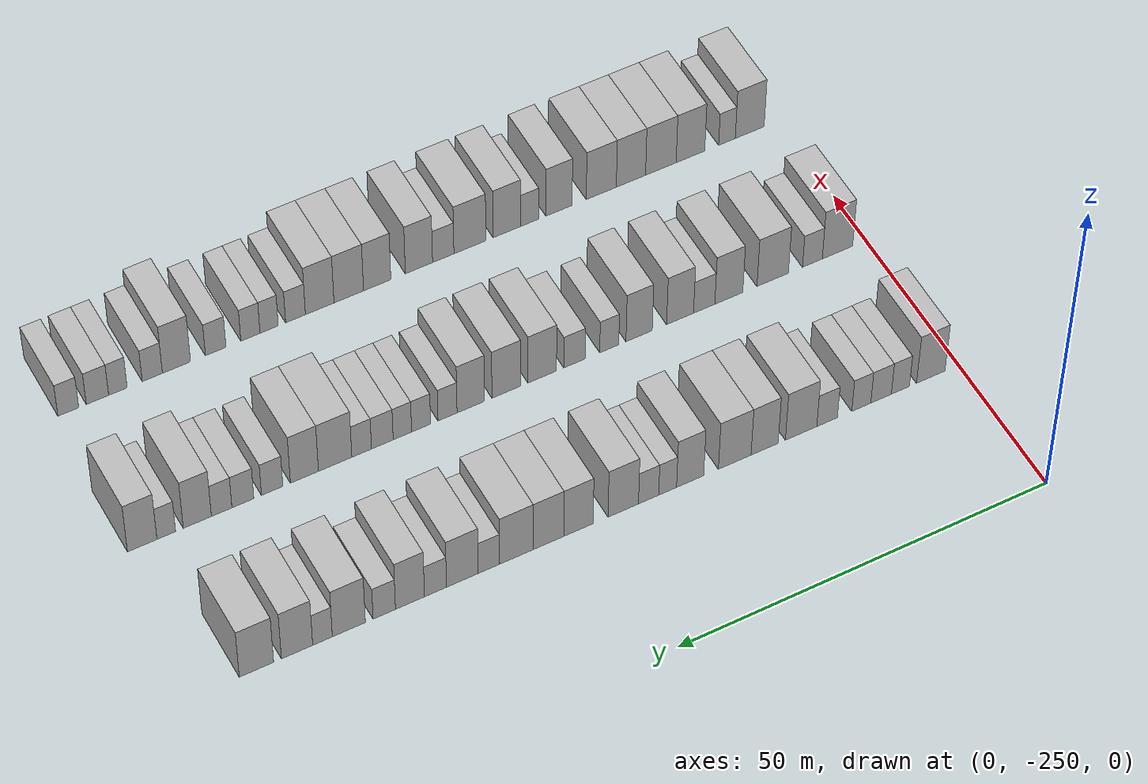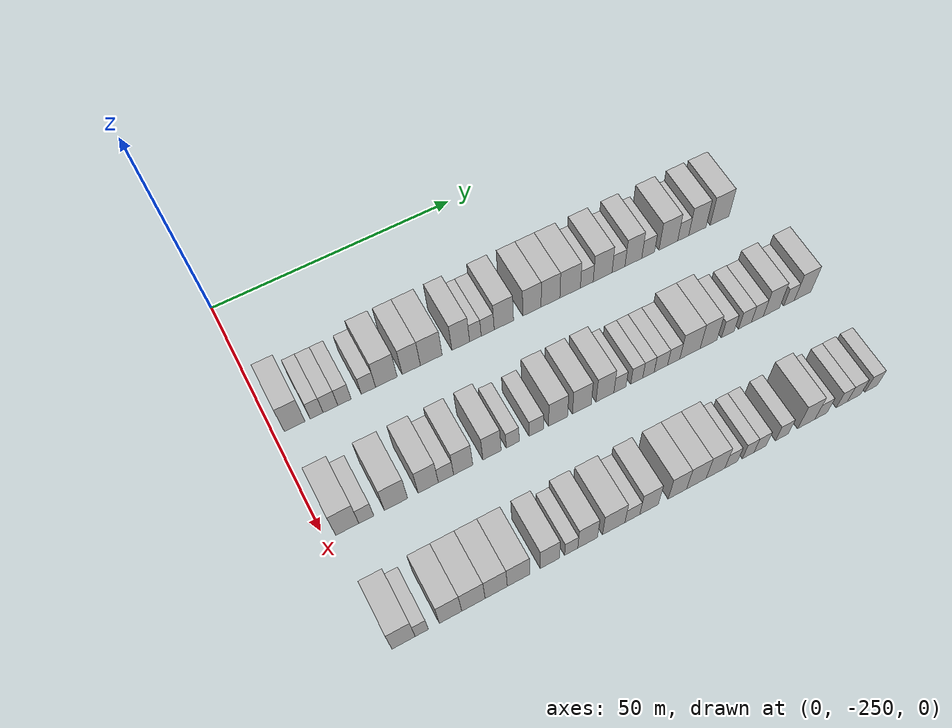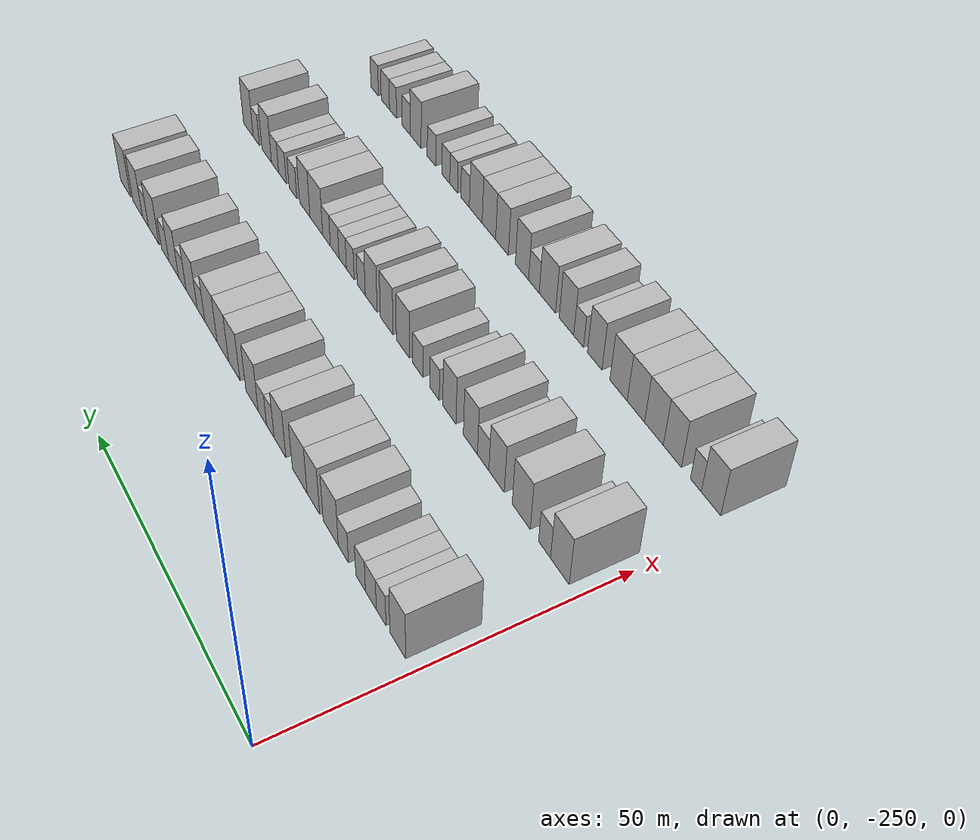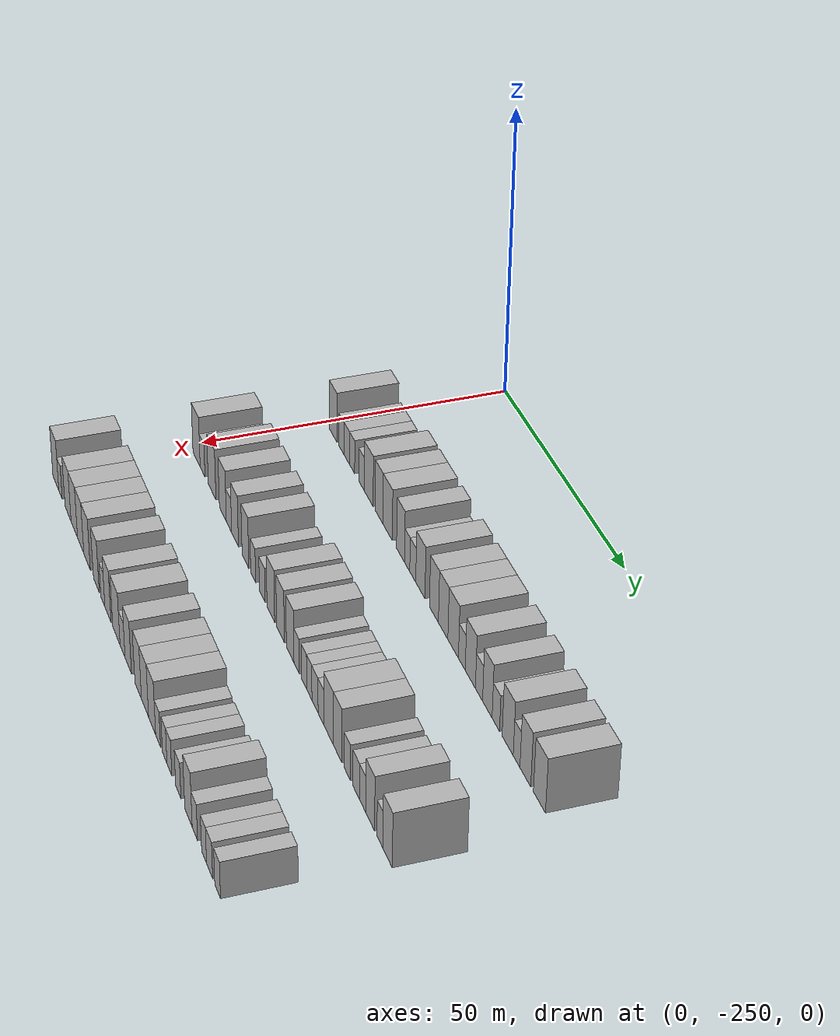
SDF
<sdf version="1.6">
 <world name="default">
  <model name="building_1">
   <static>1</static>
   <pose>25.0000 -245.9972 0 0.000000 0.000000 0.000000</pose>
   <link name="link">
    <pose>0 0 4.50 0 0 0</pose>
    <collision name="collision"><geometry><box><size>10.0000 4.0056 9.0000</size></box></geometry></collision>
    <visual name="visual">
     <cast_shadows>0</cast_shadows>
     <geometry><box><size>10.0000 4.0056 9.0000</size></box></geometry>
     <material>
      <script>
       <uri>model://HANNAS_wall/materials/scripts</uri>
       <uri>model://HANNAS_wall/materials/textures</uri>
       <name>vrc/HANNAS_wall</name>
      </script>
     </material>
    </visual>
   </link>
  </model>
  <model name="building_2">
   <static>1</static>
   <pose>25.0000 -241.7306 0 0.000000 0.000000 0.000000</pose>
   <link name="link">
    <pose>0 0 3.00 0 0 0</pose>
    <collision name="collision"><geometry><box><size>10.0000 2.5277 6.0000</size></box></geometry></collision>
    <visual name="visual">
     <cast_shadows>0</cast_shadows>
     <geometry><box><size>10.0000 2.5277 6.0000</size></box></geometry>
     <material>
      <script>
       <uri>model://HANNAS_wall/materials/scripts</uri>
       <uri>model://HANNAS_wall/materials/textures</uri>
       <name>vrc/HANNAS_wall</name>
      </script>
     </material>
    </visual>
   </link>
  </model>
  <model name="building_3">
   <static>1</static>
   <pose>25.0000 -239.0258 0 0.000000 0.000000 0.000000</pose>
   <link name="link">
    <pose>0 0 3.00 0 0 0</pose>
    <collision name="collision"><geometry><box><size>10.0000 2.8818 6.0000</size></box></geometry></collision>
    <visual name="visual">
     <cast_shadows>0</cast_shadows>
     <geometry><box><size>10.0000 2.8818 6.0000</size></box></geometry>
     <material>
      <script>
       <uri>model://HANNAS_wall/materials/scripts</uri>
       <uri>model://HANNAS_wall/materials/textures</uri>
       <name>vrc/HANNAS_wall</name>
      </script>
     </material>
    </visual>
   </link>
  </model>
  <model name="building_4">
   <static>1</static>
   <pose>25.0000 -236.2623 0 0.000000 0.000000 0.000000</pose>
   <link name="link">
    <pose>0 0 3.00 0 0 0</pose>
    <collision name="collision"><geometry><box><size>10.0000 2.6450 6.0000</size></box></geometry></collision>
    <visual name="visual">
     <cast_shadows>0</cast_shadows>
     <geometry><box><size>10.0000 2.6450 6.0000</size></box></geometry>
     <material>
      <script>
       <uri>model://HANNAS_wall/materials/scripts</uri>
       <uri>model://HANNAS_wall/materials/textures</uri>
       <name>vrc/HANNAS_wall</name>
      </script>
     </material>
    </visual>
   </link>
  </model>
  <model name="building_5">
   <static>1</static>
   <pose>25.0000 -231.5114 0 0.000000 0.000000 0.000000</pose>
   <link name="link">
    <pose>0 0 3.00 0 0 0</pose>
    <collision name="collision"><geometry><box><size>10.0000 2.8569 6.0000</size></box></geometry></collision>
    <visual name="visual">
     <cast_shadows>0</cast_shadows>
     <geometry><box><size>10.0000 2.8569 6.0000</size></box></geometry>
     <material>
      <script>
       <uri>model://HANNAS_wall/materials/scripts</uri>
       <uri>model://HANNAS_wall/materials/textures</uri>
       <name>vrc/HANNAS_wall</name>
      </script>
     </material>
    </visual>
   </link>
  </model>
  <model name="building_6">
   <static>1</static>
   <pose>25.0000 -227.9132 0 0.000000 0.000000 0.000000</pose>
   <link name="link">
    <pose>0 0 4.50 0 0 0</pose>
    <collision name="collision"><geometry><box><size>10.0000 4.3393 9.0000</size></box></geometry></collision>
    <visual name="visual">
     <cast_shadows>0</cast_shadows>
     <geometry><box><size>10.0000 4.3393 9.0000</size></box></geometry>
     <material>
      <script>
       <uri>model://HANNAS_wall/materials/scripts</uri>
       <uri>model://HANNAS_wall/materials/textures</uri>
       <name>vrc/HANNAS_wall</name>
      </script>
     </material>
    </visual>
   </link>
  </model>
  <model name="building_7">
   <static>1</static>
   <pose>25.0000 -222.8811 0 0.000000 0.000000 0.000000</pose>
   <link name="link">
    <pose>0 0 4.50 0 0 0</pose>
    <collision name="collision"><geometry><box><size>10.0000 3.7250 9.0000</size></box></geometry></collision>
    <visual name="visual">
     <cast_shadows>0</cast_shadows>
     <geometry><box><size>10.0000 3.7250 9.0000</size></box></geometry>
     <material>
      <script>
       <uri>model://HANNAS_wall/materials/scripts</uri>
       <uri>model://HANNAS_wall/materials/textures</uri>
       <name>vrc/HANNAS_wall</name>
      </script>
     </material>
    </visual>
   </link>
  </model>
  <model name="building_8">
   <static>1</static>
   <pose>25.0000 -218.7858 0 0.000000 0.000000 0.000000</pose>
   <link name="link">
    <pose>0 0 4.50 0 0 0</pose>
    <collision name="collision"><geometry><box><size>10.0000 4.4654 9.0000</size></box></geometry></collision>
    <visual name="visual">
     <cast_shadows>0</cast_shadows>
     <geometry><box><size>10.0000 4.4654 9.0000</size></box></geometry>
     <material>
      <script>
       <uri>model://HANNAS_wall/materials/scripts</uri>
       <uri>model://HANNAS_wall/materials/textures</uri>
       <name>vrc/HANNAS_wall</name>
      </script>
     </material>
    </visual>
   </link>
  </model>
  <model name="building_9">
   <static>1</static>
   <pose>25.0000 -212.7081 0 0.000000 0.000000 0.000000</pose>
   <link name="link">
    <pose>0 0 4.50 0 0 0</pose>
    <collision name="collision"><geometry><box><size>10.0000 3.6901 9.0000</size></box></geometry></collision>
    <visual name="visual">
     <cast_shadows>0</cast_shadows>
     <geometry><box><size>10.0000 3.6901 9.0000</size></box></geometry>
     <material>
      <script>
       <uri>model://HANNAS_wall/materials/scripts</uri>
       <uri>model://HANNAS_wall/materials/textures</uri>
       <name>vrc/HANNAS_wall</name>
      </script>
     </material>
    </visual>
   </link>
  </model>
  <model name="building_10">
   <static>1</static>
   <pose>25.0000 -209.6533 0 0.000000 0.000000 0.000000</pose>
   <link name="link">
    <pose>0 0 3.00 0 0 0</pose>
    <collision name="collision"><geometry><box><size>10.0000 2.4195 6.0000</size></box></geometry></collision>
    <visual name="visual">
     <cast_shadows>0</cast_shadows>
     <geometry><box><size>10.0000 2.4195 6.0000</size></box></geometry>
     <material>
      <script>
       <uri>model://HANNAS_wall/materials/scripts</uri>
       <uri>model://HANNAS_wall/materials/textures</uri>
       <name>vrc/HANNAS_wall</name>
      </script>
     </material>
    </visual>
   </link>
  </model>
  <model name="building_11">
   <static>1</static>
   <pose>25.0000 -207.0772 0 0.000000 0.000000 0.000000</pose>
   <link name="link">
    <pose>0 0 3.00 0 0 0</pose>
    <collision name="collision"><geometry><box><size>10.0000 2.7327 6.0000</size></box></geometry></collision>
    <visual name="visual">
     <cast_shadows>0</cast_shadows>
     <geometry><box><size>10.0000 2.7327 6.0000</size></box></geometry>
     <material>
      <script>
       <uri>model://HANNAS_wall/materials/scripts</uri>
       <uri>model://HANNAS_wall/materials/textures</uri>
       <name>vrc/HANNAS_wall</name>
      </script>
     </material>
    </visual>
   </link>
  </model>
  <model name="building_12">
   <static>1</static>
   <pose>25.0000 -203.6651 0 0.000000 0.000000 0.000000</pose>
   <link name="link">
    <pose>0 0 4.50 0 0 0</pose>
    <collision name="collision"><geometry><box><size>10.0000 4.0914 9.0000</size></box></geometry></collision>
    <visual name="visual">
     <cast_shadows>0</cast_shadows>
     <geometry><box><size>10.0000 4.0914 9.0000</size></box></geometry>
     <material>
      <script>
       <uri>model://HANNAS_wall/materials/scripts</uri>
       <uri>model://HANNAS_wall/materials/textures</uri>
       <name>vrc/HANNAS_wall</name>
      </script>
     </material>
    </visual>
   </link>
  </model>
  <model name="building_13">
   <static>1</static>
   <pose>25.0000 -197.6630 0 0.000000 0.000000 0.000000</pose>
   <link name="link">
    <pose>0 0 4.50 0 0 0</pose>
    <collision name="collision"><geometry><box><size>10.0000 3.9128 9.0000</size></box></geometry></collision>
    <visual name="visual">
     <cast_shadows>0</cast_shadows>
     <geometry><box><size>10.0000 3.9128 9.0000</size></box></geometry>
     <material>
      <script>
       <uri>model://HANNAS_wall/materials/scripts</uri>
       <uri>model://HANNAS_wall/materials/textures</uri>
       <name>vrc/HANNAS_wall</name>
      </script>
     </material>
    </visual>
   </link>
  </model>
  <model name="building_14">
   <static>1</static>
   <pose>25.0000 -193.6784 0 0.000000 0.000000 0.000000</pose>
   <link name="link">
    <pose>0 0 4.50 0 0 0</pose>
    <collision name="collision"><geometry><box><size>10.0000 4.0564 9.0000</size></box></geometry></collision>
    <visual name="visual">
     <cast_shadows>0</cast_shadows>
     <geometry><box><size>10.0000 4.0564 9.0000</size></box></geometry>
     <material>
      <script>
       <uri>model://HANNAS_wall/materials/scripts</uri>
       <uri>model://HANNAS_wall/materials/textures</uri>
       <name>vrc/HANNAS_wall</name>
      </script>
     </material>
    </visual>
   </link>
  </model>
  <model name="building_15">
   <static>1</static>
   <pose>25.0000 -189.4196 0 0.000000 0.000000 0.000000</pose>
   <link name="link">
    <pose>0 0 4.50 0 0 0</pose>
    <collision name="collision"><geometry><box><size>10.0000 4.4612 9.0000</size></box></geometry></collision>
    <visual name="visual">
     <cast_shadows>0</cast_shadows>
     <geometry><box><size>10.0000 4.4612 9.0000</size></box></geometry>
     <material>
      <script>
       <uri>model://HANNAS_wall/materials/scripts</uri>
       <uri>model://HANNAS_wall/materials/textures</uri>
       <name>vrc/HANNAS_wall</name>
      </script>
     </material>
    </visual>
   </link>
  </model>
  <model name="building_16">
   <static>1</static>
   <pose>25.0000 -185.7799 0 0.000000 0.000000 0.000000</pose>
   <link name="link">
    <pose>0 0 3.00 0 0 0</pose>
    <collision name="collision"><geometry><box><size>10.0000 2.8181 6.0000</size></box></geometry></collision>
    <visual name="visual">
     <cast_shadows>0</cast_shadows>
     <geometry><box><size>10.0000 2.8181 6.0000</size></box></geometry>
     <material>
      <script>
       <uri>model://HANNAS_wall/materials/scripts</uri>
       <uri>model://HANNAS_wall/materials/textures</uri>
       <name>vrc/HANNAS_wall</name>
      </script>
     </material>
    </visual>
   </link>
  </model>
  <model name="building_17">
   <static>1</static>
   <pose>25.0000 -182.2853 0 0.000000 0.000000 0.000000</pose>
   <link name="link">
    <pose>0 0 4.50 0 0 0</pose>
    <collision name="collision"><geometry><box><size>10.0000 4.1711 9.0000</size></box></geometry></collision>
    <visual name="visual">
     <cast_shadows>0</cast_shadows>
     <geometry><box><size>10.0000 4.1711 9.0000</size></box></geometry>
     <material>
      <script>
       <uri>model://HANNAS_wall/materials/scripts</uri>
       <uri>model://HANNAS_wall/materials/textures</uri>
       <name>vrc/HANNAS_wall</name>
      </script>
     </material>
    </visual>
   </link>
  </model>
  <model name="building_18">
   <static>1</static>
   <pose>25.0000 -178.7559 0 0.000000 0.000000 0.000000</pose>
   <link name="link">
    <pose>0 0 3.00 0 0 0</pose>
    <collision name="collision"><geometry><box><size>10.0000 2.8878 6.0000</size></box></geometry></collision>
    <visual name="visual">
     <cast_shadows>0</cast_shadows>
     <geometry><box><size>10.0000 2.8878 6.0000</size></box></geometry>
     <material>
      <script>
       <uri>model://HANNAS_wall/materials/scripts</uri>
       <uri>model://HANNAS_wall/materials/textures</uri>
       <name>vrc/HANNAS_wall</name>
      </script>
     </material>
    </visual>
   </link>
  </model>
  <model name="building_19">
   <static>1</static>
   <pose>25.0000 -175.4224 0 0.000000 0.000000 0.000000</pose>
   <link name="link">
    <pose>0 0 4.50 0 0 0</pose>
    <collision name="collision"><geometry><box><size>10.0000 3.7793 9.0000</size></box></geometry></collision>
    <visual name="visual">
     <cast_shadows>0</cast_shadows>
     <geometry><box><size>10.0000 3.7793 9.0000</size></box></geometry>
     <material>
      <script>
       <uri>model://HANNAS_wall/materials/scripts</uri>
       <uri>model://HANNAS_wall/materials/textures</uri>
       <name>vrc/HANNAS_wall</name>
      </script>
     </material>
    </visual>
   </link>
  </model>
  <model name="building_20">
   <static>1</static>
   <pose>25.0000 -172.0782 0 0.000000 0.000000 0.000000</pose>
   <link name="link">
    <pose>0 0 3.00 0 0 0</pose>
    <collision name="collision"><geometry><box><size>10.0000 2.9092 6.0000</size></box></geometry></collision>
    <visual name="visual">
     <cast_shadows>0</cast_shadows>
     <geometry><box><size>10.0000 2.9092 6.0000</size></box></geometry>
     <material>
      <script>
       <uri>model://HANNAS_wall/materials/scripts</uri>
       <uri>model://HANNAS_wall/materials/textures</uri>
       <name>vrc/HANNAS_wall</name>
      </script>
     </material>
    </visual>
   </link>
  </model>
  <model name="building_21">
   <static>1</static>
   <pose>25.0000 -167.4889 0 0.000000 0.000000 0.000000</pose>
   <link name="link">
    <pose>0 0 4.50 0 0 0</pose>
    <collision name="collision"><geometry><box><size>10.0000 4.2693 9.0000</size></box></geometry></collision>
    <visual name="visual">
     <cast_shadows>0</cast_shadows>
     <geometry><box><size>10.0000 4.2693 9.0000</size></box></geometry>
     <material>
      <script>
       <uri>model://HANNAS_wall/materials/scripts</uri>
       <uri>model://HANNAS_wall/materials/textures</uri>
       <name>vrc/HANNAS_wall</name>
      </script>
     </material>
    </visual>
   </link>
  </model>
  <model name="building_22">
   <static>1</static>
   <pose>25.0000 -164.0879 0 0.000000 0.000000 0.000000</pose>
   <link name="link">
    <pose>0 0 3.00 0 0 0</pose>
    <collision name="collision"><geometry><box><size>10.0000 2.5327 6.0000</size></box></geometry></collision>
    <visual name="visual">
     <cast_shadows>0</cast_shadows>
     <geometry><box><size>10.0000 2.5327 6.0000</size></box></geometry>
     <material>
      <script>
       <uri>model://HANNAS_wall/materials/scripts</uri>
       <uri>model://HANNAS_wall/materials/textures</uri>
       <name>vrc/HANNAS_wall</name>
      </script>
     </material>
    </visual>
   </link>
  </model>
  <model name="building_23">
   <static>1</static>
   <pose>25.0000 -160.8175 0 0.000000 0.000000 0.000000</pose>
   <link name="link">
    <pose>0 0 4.50 0 0 0</pose>
    <collision name="collision"><geometry><box><size>10.0000 4.0081 9.0000</size></box></geometry></collision>
    <visual name="visual">
     <cast_shadows>0</cast_shadows>
     <geometry><box><size>10.0000 4.0081 9.0000</size></box></geometry>
     <material>
      <script>
       <uri>model://HANNAS_wall/materials/scripts</uri>
       <uri>model://HANNAS_wall/materials/textures</uri>
       <name>vrc/HANNAS_wall</name>
      </script>
     </material>
    </visual>
   </link>
  </model>
  <model name="building_24">
   <static>1</static>
   <pose>25.0000 -155.6202 0 0.000000 0.000000 0.000000</pose>
   <link name="link">
    <pose>0 0 4.50 0 0 0</pose>
    <collision name="collision"><geometry><box><size>10.0000 4.3866 9.0000</size></box></geometry></collision>
    <visual name="visual">
     <cast_shadows>0</cast_shadows>
     <geometry><box><size>10.0000 4.3866 9.0000</size></box></geometry>
     <material>
      <script>
       <uri>model://HANNAS_wall/materials/scripts</uri>
       <uri>model://HANNAS_wall/materials/textures</uri>
       <name>vrc/HANNAS_wall</name>
      </script>
     </material>
    </visual>
   </link>
  </model>
  <model name="building_125">
   <static>1</static>
   <pose>47.0000 -245.8336 0 0.000000 0.000000 0.000000</pose>
   <link name="link">
    <pose>0 0 4.50 0 0 0</pose>
    <collision name="collision"><geometry><box><size>10.0000 4.3329 9.0000</size></box></geometry></collision>
    <visual name="visual">
     <cast_shadows>0</cast_shadows>
     <geometry><box><size>10.0000 4.3329 9.0000</size></box></geometry>
     <material>
      <script>
       <uri>model://HANNAS_wall/materials/scripts</uri>
       <uri>model://HANNAS_wall/materials/textures</uri>
       <name>vrc/HANNAS_wall</name>
      </script>
     </material>
    </visual>
   </link>
  </model>
  <model name="building_126">
   <static>1</static>
   <pose>47.0000 -242.2554 0 0.000000 0.000000 0.000000</pose>
   <link name="link">
    <pose>0 0 3.00 0 0 0</pose>
    <collision name="collision"><geometry><box><size>10.0000 2.8234 6.0000</size></box></geometry></collision>
    <visual name="visual">
     <cast_shadows>0</cast_shadows>
     <geometry><box><size>10.0000 2.8234 6.0000</size></box></geometry>
     <material>
      <script>
       <uri>model://HANNAS_wall/materials/scripts</uri>
       <uri>model://HANNAS_wall/materials/textures</uri>
       <name>vrc/HANNAS_wall</name>
      </script>
     </material>
    </visual>
   </link>
  </model>
  <model name="building_127">
   <static>1</static>
   <pose>47.0000 -236.6186 0 0.000000 0.000000 0.000000</pose>
   <link name="link">
    <pose>0 0 4.50 0 0 0</pose>
    <collision name="collision"><geometry><box><size>10.0000 4.4503 9.0000</size></box></geometry></collision>
    <visual name="visual">
     <cast_shadows>0</cast_shadows>
     <geometry><box><size>10.0000 4.4503 9.0000</size></box></geometry>
     <material>
      <script>
       <uri>model://HANNAS_wall/materials/scripts</uri>
       <uri>model://HANNAS_wall/materials/textures</uri>
       <name>vrc/HANNAS_wall</name>
      </script>
     </material>
    </visual>
   </link>
  </model>
  <model name="building_128">
   <static>1</static>
   <pose>47.0000 -230.4274 0 0.000000 0.000000 0.000000</pose>
   <link name="link">
    <pose>0 0 4.50 0 0 0</pose>
    <collision name="collision"><geometry><box><size>10.0000 3.9320 9.0000</size></box></geometry></collision>
    <visual name="visual">
     <cast_shadows>0</cast_shadows>
     <geometry><box><size>10.0000 3.9320 9.0000</size></box></geometry>
     <material>
      <script>
       <uri>model://HANNAS_wall/materials/scripts</uri>
       <uri>model://HANNAS_wall/materials/textures</uri>
       <name>vrc/HANNAS_wall</name>
      </script>
     </material>
    </visual>
   </link>
  </model>
  <model name="building_129">
   <static>1</static>
   <pose>47.0000 -226.9671 0 0.000000 0.000000 0.000000</pose>
   <link name="link">
    <pose>0 0 3.00 0 0 0</pose>
    <collision name="collision"><geometry><box><size>10.0000 2.9887 6.0000</size></box></geometry></collision>
    <visual name="visual">
     <cast_shadows>0</cast_shadows>
     <geometry><box><size>10.0000 2.9887 6.0000</size></box></geometry>
     <material>
      <script>
       <uri>model://HANNAS_wall/materials/scripts</uri>
       <uri>model://HANNAS_wall/materials/textures</uri>
       <name>vrc/HANNAS_wall</name>
      </script>
     </material>
    </visual>
   </link>
  </model>
  <model name="building_130">
   <static>1</static>
   <pose>47.0000 -223.5919 0 0.000000 0.000000 0.000000</pose>
   <link name="link">
    <pose>0 0 4.50 0 0 0</pose>
    <collision name="collision"><geometry><box><size>10.0000 3.7616 9.0000</size></box></geometry></collision>
    <visual name="visual">
     <cast_shadows>0</cast_shadows>
     <geometry><box><size>10.0000 3.7616 9.0000</size></box></geometry>
     <material>
      <script>
       <uri>model://HANNAS_wall/materials/scripts</uri>
       <uri>model://HANNAS_wall/materials/textures</uri>
       <name>vrc/HANNAS_wall</name>
      </script>
     </material>
    </visual>
   </link>
  </model>
  <model name="building_131">
   <static>1</static>
   <pose>47.0000 -217.8891 0 0.000000 0.000000 0.000000</pose>
   <link name="link">
    <pose>0 0 4.50 0 0 0</pose>
    <collision name="collision"><geometry><box><size>10.0000 3.6440 9.0000</size></box></geometry></collision>
    <visual name="visual">
     <cast_shadows>0</cast_shadows>
     <geometry><box><size>10.0000 3.6440 9.0000</size></box></geometry>
     <material>
      <script>
       <uri>model://HANNAS_wall/materials/scripts</uri>
       <uri>model://HANNAS_wall/materials/textures</uri>
       <name>vrc/HANNAS_wall</name>
      </script>
     </material>
    </visual>
   </link>
  </model>
  <model name="building_132">
   <static>1</static>
   <pose>47.0000 -213.7544 0 0.000000 0.000000 0.000000</pose>
   <link name="link">
    <pose>0 0 3.00 0 0 0</pose>
    <collision name="collision"><geometry><box><size>10.0000 2.6256 6.0000</size></box></geometry></collision>
    <visual name="visual">
     <cast_shadows>0</cast_shadows>
     <geometry><box><size>10.0000 2.6256 6.0000</size></box></geometry>
     <material>
      <script>
       <uri>model://HANNAS_wall/materials/scripts</uri>
       <uri>model://HANNAS_wall/materials/textures</uri>
       <name>vrc/HANNAS_wall</name>
      </script>
     </material>
    </visual>
   </link>
  </model>
  <model name="building_133">
   <static>1</static>
   <pose>47.0000 -208.9668 0 0.000000 0.000000 0.000000</pose>
   <link name="link">
    <pose>0 0 3.00 0 0 0</pose>
    <collision name="collision"><geometry><box><size>10.0000 2.9496 6.0000</size></box></geometry></collision>
    <visual name="visual">
     <cast_shadows>0</cast_shadows>
     <geometry><box><size>10.0000 2.9496 6.0000</size></box></geometry>
     <material>
      <script>
       <uri>model://HANNAS_wall/materials/scripts</uri>
       <uri>model://HANNAS_wall/materials/textures</uri>
       <name>vrc/HANNAS_wall</name>
      </script>
     </material>
    </visual>
   </link>
  </model>
  <model name="building_134">
   <static>1</static>
   <pose>47.0000 -204.5422 0 0.000000 0.000000 0.000000</pose>
   <link name="link">
    <pose>0 0 4.50 0 0 0</pose>
    <collision name="collision"><geometry><box><size>10.0000 3.8995 9.0000</size></box></geometry></collision>
    <visual name="visual">
     <cast_shadows>0</cast_shadows>
     <geometry><box><size>10.0000 3.8995 9.0000</size></box></geometry>
     <material>
      <script>
       <uri>model://HANNAS_wall/materials/scripts</uri>
       <uri>model://HANNAS_wall/materials/textures</uri>
       <name>vrc/HANNAS_wall</name>
      </script>
     </material>
    </visual>
   </link>
  </model>
  <model name="building_135">
   <static>1</static>
   <pose>47.0000 -199.6433 0 0.000000 0.000000 0.000000</pose>
   <link name="link">
    <pose>0 0 4.50 0 0 0</pose>
    <collision name="collision"><geometry><box><size>10.0000 3.8981 9.0000</size></box></geometry></collision>
    <visual name="visual">
     <cast_shadows>0</cast_shadows>
     <geometry><box><size>10.0000 3.8981 9.0000</size></box></geometry>
     <material>
      <script>
       <uri>model://HANNAS_wall/materials/scripts</uri>
       <uri>model://HANNAS_wall/materials/textures</uri>
       <name>vrc/HANNAS_wall</name>
      </script>
     </material>
    </visual>
   </link>
  </model>
  <model name="building_136">
   <static>1</static>
   <pose>47.0000 -194.8281 0 0.000000 0.000000 0.000000</pose>
   <link name="link">
    <pose>0 0 4.50 0 0 0</pose>
    <collision name="collision"><geometry><box><size>10.0000 3.7323 9.0000</size></box></geometry></collision>
    <visual name="visual">
     <cast_shadows>0</cast_shadows>
     <geometry><box><size>10.0000 3.7323 9.0000</size></box></geometry>
     <material>
      <script>
       <uri>model://HANNAS_wall/materials/scripts</uri>
       <uri>model://HANNAS_wall/materials/textures</uri>
       <name>vrc/HANNAS_wall</name>
      </script>
     </material>
    </visual>
   </link>
  </model>
  <model name="building_137">
   <static>1</static>
   <pose>47.0000 -191.6771 0 0.000000 0.000000 0.000000</pose>
   <link name="link">
    <pose>0 0 3.00 0 0 0</pose>
    <collision name="collision"><geometry><box><size>10.0000 2.5698 6.0000</size></box></geometry></collision>
    <visual name="visual">
     <cast_shadows>0</cast_shadows>
     <geometry><box><size>10.0000 2.5698 6.0000</size></box></geometry>
     <material>
      <script>
       <uri>model://HANNAS_wall/materials/scripts</uri>
       <uri>model://HANNAS_wall/materials/textures</uri>
       <name>vrc/HANNAS_wall</name>
      </script>
     </material>
    </visual>
   </link>
  </model>
  <model name="building_138">
   <static>1</static>
   <pose>47.0000 -188.1153 0 0.000000 0.000000 0.000000</pose>
   <link name="link">
    <pose>0 0 3.00 0 0 0</pose>
    <collision name="collision"><geometry><box><size>10.0000 2.5538 6.0000</size></box></geometry></collision>
    <visual name="visual">
     <cast_shadows>0</cast_shadows>
     <geometry><box><size>10.0000 2.5538 6.0000</size></box></geometry>
     <material>
      <script>
       <uri>model://HANNAS_wall/materials/scripts</uri>
       <uri>model://HANNAS_wall/materials/textures</uri>
       <name>vrc/HANNAS_wall</name>
      </script>
     </material>
    </visual>
   </link>
  </model>
  <model name="building_139">
   <static>1</static>
   <pose>47.0000 -185.6046 0 0.000000 0.000000 0.000000</pose>
   <link name="link">
    <pose>0 0 3.00 0 0 0</pose>
    <collision name="collision"><geometry><box><size>10.0000 2.4676 6.0000</size></box></geometry></collision>
    <visual name="visual">
     <cast_shadows>0</cast_shadows>
     <geometry><box><size>10.0000 2.4676 6.0000</size></box></geometry>
     <material>
      <script>
       <uri>model://HANNAS_wall/materials/scripts</uri>
       <uri>model://HANNAS_wall/materials/textures</uri>
       <name>vrc/HANNAS_wall</name>
      </script>
     </material>
    </visual>
   </link>
  </model>
  <model name="building_140">
   <static>1</static>
   <pose>47.0000 -182.9211 0 0.000000 0.000000 0.000000</pose>
   <link name="link">
    <pose>0 0 3.00 0 0 0</pose>
    <collision name="collision"><geometry><box><size>10.0000 2.8992 6.0000</size></box></geometry></collision>
    <visual name="visual">
     <cast_shadows>0</cast_shadows>
     <geometry><box><size>10.0000 2.8992 6.0000</size></box></geometry>
     <material>
      <script>
       <uri>model://HANNAS_wall/materials/scripts</uri>
       <uri>model://HANNAS_wall/materials/textures</uri>
       <name>vrc/HANNAS_wall</name>
      </script>
     </material>
    </visual>
   </link>
  </model>
  <model name="building_141">
   <static>1</static>
   <pose>47.0000 -180.1619 0 0.000000 0.000000 0.000000</pose>
   <link name="link">
    <pose>0 0 3.00 0 0 0</pose>
    <collision name="collision"><geometry><box><size>10.0000 2.6192 6.0000</size></box></geometry></collision>
    <visual name="visual">
     <cast_shadows>0</cast_shadows>
     <geometry><box><size>10.0000 2.6192 6.0000</size></box></geometry>
     <material>
      <script>
       <uri>model://HANNAS_wall/materials/scripts</uri>
       <uri>model://HANNAS_wall/materials/textures</uri>
       <name>vrc/HANNAS_wall</name>
      </script>
     </material>
    </visual>
   </link>
  </model>
  <model name="building_142">
   <static>1</static>
   <pose>47.0000 -176.6361 0 0.000000 0.000000 0.000000</pose>
   <link name="link">
    <pose>0 0 4.50 0 0 0</pose>
    <collision name="collision"><geometry><box><size>10.0000 4.4325 9.0000</size></box></geometry></collision>
    <visual name="visual">
     <cast_shadows>0</cast_shadows>
     <geometry><box><size>10.0000 4.4325 9.0000</size></box></geometry>
     <material>
      <script>
       <uri>model://HANNAS_wall/materials/scripts</uri>
       <uri>model://HANNAS_wall/materials/textures</uri>
       <name>vrc/HANNAS_wall</name>
      </script>
     </material>
    </visual>
   </link>
  </model>
  <model name="building_143">
   <static>1</static>
   <pose>47.0000 -172.5653 0 0.000000 0.000000 0.000000</pose>
   <link name="link">
    <pose>0 0 4.50 0 0 0</pose>
    <collision name="collision"><geometry><box><size>10.0000 3.7090 9.0000</size></box></geometry></collision>
    <visual name="visual">
     <cast_shadows>0</cast_shadows>
     <geometry><box><size>10.0000 3.7090 9.0000</size></box></geometry>
     <material>
      <script>
       <uri>model://HANNAS_wall/materials/scripts</uri>
       <uri>model://HANNAS_wall/materials/textures</uri>
       <name>vrc/HANNAS_wall</name>
      </script>
     </material>
    </visual>
   </link>
  </model>
  <model name="building_144">
   <static>1</static>
   <pose>47.0000 -168.3067 0 0.000000 0.000000 0.000000</pose>
   <link name="link">
    <pose>0 0 3.00 0 0 0</pose>
    <collision name="collision"><geometry><box><size>10.0000 2.8083 6.0000</size></box></geometry></collision>
    <visual name="visual">
     <cast_shadows>0</cast_shadows>
     <geometry><box><size>10.0000 2.8083 6.0000</size></box></geometry>
     <material>
      <script>
       <uri>model://HANNAS_wall/materials/scripts</uri>
       <uri>model://HANNAS_wall/materials/textures</uri>
       <name>vrc/HANNAS_wall</name>
      </script>
     </material>
    </visual>
   </link>
  </model>
  <model name="building_145">
   <static>1</static>
   <pose>47.0000 -164.4655 0 0.000000 0.000000 0.000000</pose>
   <link name="link">
    <pose>0 0 3.00 0 0 0</pose>
    <collision name="collision"><geometry><box><size>10.0000 2.8742 6.0000</size></box></geometry></collision>
    <visual name="visual">
     <cast_shadows>0</cast_shadows>
     <geometry><box><size>10.0000 2.8742 6.0000</size></box></geometry>
     <material>
      <script>
       <uri>model://HANNAS_wall/materials/scripts</uri>
       <uri>model://HANNAS_wall/materials/textures</uri>
       <name>vrc/HANNAS_wall</name>
      </script>
     </material>
    </visual>
   </link>
  </model>
  <model name="building_146">
   <static>1</static>
   <pose>47.0000 -161.6875 0 0.000000 0.000000 0.000000</pose>
   <link name="link">
    <pose>0 0 3.00 0 0 0</pose>
    <collision name="collision"><geometry><box><size>10.0000 2.6816 6.0000</size></box></geometry></collision>
    <visual name="visual">
     <cast_shadows>0</cast_shadows>
     <geometry><box><size>10.0000 2.6816 6.0000</size></box></geometry>
     <material>
      <script>
       <uri>model://HANNAS_wall/materials/scripts</uri>
       <uri>model://HANNAS_wall/materials/textures</uri>
       <name>vrc/HANNAS_wall</name>
      </script>
     </material>
    </visual>
   </link>
  </model>
  <model name="building_147">
   <static>1</static>
   <pose>47.0000 -158.5149 0 0.000000 0.000000 0.000000</pose>
   <link name="link">
    <pose>0 0 4.50 0 0 0</pose>
    <collision name="collision"><geometry><box><size>10.0000 3.6636 9.0000</size></box></geometry></collision>
    <visual name="visual">
     <cast_shadows>0</cast_shadows>
     <geometry><box><size>10.0000 3.6636 9.0000</size></box></geometry>
     <material>
      <script>
       <uri>model://HANNAS_wall/materials/scripts</uri>
       <uri>model://HANNAS_wall/materials/textures</uri>
       <name>vrc/HANNAS_wall</name>
      </script>
     </material>
    </visual>
   </link>
  </model>
  <model name="building_148">
   <static>1</static>
   <pose>47.0000 -154.4753 0 0.000000 0.000000 0.000000</pose>
   <link name="link">
    <pose>0 0 3.00 0 0 0</pose>
    <collision name="collision"><geometry><box><size>10.0000 2.4155 6.0000</size></box></geometry></collision>
    <visual name="visual">
     <cast_shadows>0</cast_shadows>
     <geometry><box><size>10.0000 2.4155 6.0000</size></box></geometry>
     <material>
      <script>
       <uri>model://HANNAS_wall/materials/scripts</uri>
       <uri>model://HANNAS_wall/materials/textures</uri>
       <name>vrc/HANNAS_wall</name>
      </script>
     </material>
    </visual>
   </link>
  </model>
  <model name="building_149">
   <static>1</static>
   <pose>47.0000 -151.3633 0 0.000000 0.000000 0.000000</pose>
   <link name="link">
    <pose>0 0 4.50 0 0 0</pose>
    <collision name="collision"><geometry><box><size>10.0000 3.8087 9.0000</size></box></geometry></collision>
    <visual name="visual">
     <cast_shadows>0</cast_shadows>
     <geometry><box><size>10.0000 3.8087 9.0000</size></box></geometry>
     <material>
      <script>
       <uri>model://HANNAS_wall/materials/scripts</uri>
       <uri>model://HANNAS_wall/materials/textures</uri>
       <name>vrc/HANNAS_wall</name>
      </script>
     </material>
    </visual>
   </link>
  </model>
  <model name="building_245">
   <static>1</static>
   <pose>69.0000 -245.9042 0 0.000000 0.000000 0.000000</pose>
   <link name="link">
    <pose>0 0 4.50 0 0 0</pose>
    <collision name="collision"><geometry><box><size>10.0000 4.1915 9.0000</size></box></geometry></collision>
    <visual name="visual">
     <cast_shadows>0</cast_shadows>
     <geometry><box><size>10.0000 4.1915 9.0000</size></box></geometry>
     <material>
      <script>
       <uri>model://HANNAS_wall/materials/scripts</uri>
       <uri>model://HANNAS_wall/materials/textures</uri>
       <name>vrc/HANNAS_wall</name>
      </script>
     </material>
    </visual>
   </link>
  </model>
  <model name="building_246">
   <static>1</static>
   <pose>69.0000 -242.6058 0 0.000000 0.000000 0.000000</pose>
   <link name="link">
    <pose>0 0 3.00 0 0 0</pose>
    <collision name="collision"><geometry><box><size>10.0000 2.4053 6.0000</size></box></geometry></collision>
    <visual name="visual">
     <cast_shadows>0</cast_shadows>
     <geometry><box><size>10.0000 2.4053 6.0000</size></box></geometry>
     <material>
      <script>
       <uri>model://HANNAS_wall/materials/scripts</uri>
       <uri>model://HANNAS_wall/materials/textures</uri>
       <name>vrc/HANNAS_wall</name>
      </script>
     </material>
    </visual>
   </link>
  </model>
  <model name="building_247">
   <static>1</static>
   <pose>69.0000 -237.3421 0 0.000000 0.000000 0.000000</pose>
   <link name="link">
    <pose>0 0 4.50 0 0 0</pose>
    <collision name="collision"><geometry><box><size>10.0000 4.1221 9.0000</size></box></geometry></collision>
    <visual name="visual">
     <cast_shadows>0</cast_shadows>
     <geometry><box><size>10.0000 4.1221 9.0000</size></box></geometry>
     <material>
      <script>
       <uri>model://HANNAS_wall/materials/scripts</uri>
       <uri>model://HANNAS_wall/materials/textures</uri>
       <name>vrc/HANNAS_wall</name>
      </script>
     </material>
    </visual>
   </link>
  </model>
  <model name="building_248">
   <static>1</static>
   <pose>69.0000 -233.0923 0 0.000000 0.000000 0.000000</pose>
   <link name="link">
    <pose>0 0 4.50 0 0 0</pose>
    <collision name="collision"><geometry><box><size>10.0000 4.3775 9.0000</size></box></geometry></collision>
    <visual name="visual">
     <cast_shadows>0</cast_shadows>
     <geometry><box><size>10.0000 4.3775 9.0000</size></box></geometry>
     <material>
      <script>
       <uri>model://HANNAS_wall/materials/scripts</uri>
       <uri>model://HANNAS_wall/materials/textures</uri>
       <name>vrc/HANNAS_wall</name>
      </script>
     </material>
    </visual>
   </link>
  </model>
  <model name="building_249">
   <static>1</static>
   <pose>69.0000 -228.8221 0 0.000000 0.000000 0.000000</pose>
   <link name="link">
    <pose>0 0 4.50 0 0 0</pose>
    <collision name="collision"><geometry><box><size>10.0000 4.1630 9.0000</size></box></geometry></collision>
    <visual name="visual">
     <cast_shadows>0</cast_shadows>
     <geometry><box><size>10.0000 4.1630 9.0000</size></box></geometry>
     <material>
      <script>
       <uri>model://HANNAS_wall/materials/scripts</uri>
       <uri>model://HANNAS_wall/materials/textures</uri>
       <name>vrc/HANNAS_wall</name>
      </script>
     </material>
    </visual>
   </link>
  </model>
  <model name="building_250">
   <static>1</static>
   <pose>69.0000 -224.6041 0 0.000000 0.000000 0.000000</pose>
   <link name="link">
    <pose>0 0 4.50 0 0 0</pose>
    <collision name="collision"><geometry><box><size>10.0000 4.2729 9.0000</size></box></geometry></collision>
    <visual name="visual">
     <cast_shadows>0</cast_shadows>
     <geometry><box><size>10.0000 4.2729 9.0000</size></box></geometry>
     <material>
      <script>
       <uri>model://HANNAS_wall/materials/scripts</uri>
       <uri>model://HANNAS_wall/materials/textures</uri>
       <name>vrc/HANNAS_wall</name>
      </script>
     </material>
    </visual>
   </link>
  </model>
  <model name="building_251">
   <static>1</static>
   <pose>69.0000 -218.6204 0 0.000000 0.000000 0.000000</pose>
   <link name="link">
    <pose>0 0 4.50 0 0 0</pose>
    <collision name="collision"><geometry><box><size>10.0000 3.6945 9.0000</size></box></geometry></collision>
    <visual name="visual">
     <cast_shadows>0</cast_shadows>
     <geometry><box><size>10.0000 3.6945 9.0000</size></box></geometry>
     <material>
      <script>
       <uri>model://HANNAS_wall/materials/scripts</uri>
       <uri>model://HANNAS_wall/materials/textures</uri>
       <name>vrc/HANNAS_wall</name>
      </script>
     </material>
    </visual>
   </link>
  </model>
  <model name="building_252">
   <static>1</static>
   <pose>69.0000 -214.4936 0 0.000000 0.000000 0.000000</pose>
   <link name="link">
    <pose>0 0 3.00 0 0 0</pose>
    <collision name="collision"><geometry><box><size>10.0000 2.5592 6.0000</size></box></geometry></collision>
    <visual name="visual">
     <cast_shadows>0</cast_shadows>
     <geometry><box><size>10.0000 2.5592 6.0000</size></box></geometry>
     <material>
      <script>
       <uri>model://HANNAS_wall/materials/scripts</uri>
       <uri>model://HANNAS_wall/materials/textures</uri>
       <name>vrc/HANNAS_wall</name>
      </script>
     </material>
    </visual>
   </link>
  </model>
  <model name="building_253">
   <static>1</static>
   <pose>69.0000 -211.2881 0 0.000000 0.000000 0.000000</pose>
   <link name="link">
    <pose>0 0 4.50 0 0 0</pose>
    <collision name="collision"><geometry><box><size>10.0000 3.8518 9.0000</size></box></geometry></collision>
    <visual name="visual">
     <cast_shadows>0</cast_shadows>
     <geometry><box><size>10.0000 3.8518 9.0000</size></box></geometry>
     <material>
      <script>
       <uri>model://HANNAS_wall/materials/scripts</uri>
       <uri>model://HANNAS_wall/materials/textures</uri>
       <name>vrc/HANNAS_wall</name>
      </script>
     </material>
    </visual>
   </link>
  </model>
  <model name="building_254">
   <static>1</static>
   <pose>69.0000 -206.1366 0 0.000000 0.000000 0.000000</pose>
   <link name="link">
    <pose>0 0 4.50 0 0 0</pose>
    <collision name="collision"><geometry><box><size>10.0000 4.4510 9.0000</size></box></geometry></collision>
    <visual name="visual">
     <cast_shadows>0</cast_shadows>
     <geometry><box><size>10.0000 4.4510 9.0000</size></box></geometry>
     <material>
      <script>
       <uri>model://HANNAS_wall/materials/scripts</uri>
       <uri>model://HANNAS_wall/materials/textures</uri>
       <name>vrc/HANNAS_wall</name>
      </script>
     </material>
    </visual>
   </link>
  </model>
  <model name="building_255">
   <static>1</static>
   <pose>69.0000 -202.4299 0 0.000000 0.000000 0.000000</pose>
   <link name="link">
    <pose>0 0 3.00 0 0 0</pose>
    <collision name="collision"><geometry><box><size>10.0000 2.9625 6.0000</size></box></geometry></collision>
    <visual name="visual">
     <cast_shadows>0</cast_shadows>
     <geometry><box><size>10.0000 2.9625 6.0000</size></box></geometry>
     <material>
      <script>
       <uri>model://HANNAS_wall/materials/scripts</uri>
       <uri>model://HANNAS_wall/materials/textures</uri>
       <name>vrc/HANNAS_wall</name>
      </script>
     </material>
    </visual>
   </link>
  </model>
  <model name="building_256">
   <static>1</static>
   <pose>69.0000 -199.0668 0 0.000000 0.000000 0.000000</pose>
   <link name="link">
    <pose>0 0 4.50 0 0 0</pose>
    <collision name="collision"><geometry><box><size>10.0000 3.7637 9.0000</size></box></geometry></collision>
    <visual name="visual">
     <cast_shadows>0</cast_shadows>
     <geometry><box><size>10.0000 3.7637 9.0000</size></box></geometry>
     <material>
      <script>
       <uri>model://HANNAS_wall/materials/scripts</uri>
       <uri>model://HANNAS_wall/materials/textures</uri>
       <name>vrc/HANNAS_wall</name>
      </script>
     </material>
    </visual>
   </link>
  </model>
  <model name="building_257">
   <static>1</static>
   <pose>69.0000 -193.3119 0 0.000000 0.000000 0.000000</pose>
   <link name="link">
    <pose>0 0 4.50 0 0 0</pose>
    <collision name="collision"><geometry><box><size>10.0000 3.7461 9.0000</size></box></geometry></collision>
    <visual name="visual">
     <cast_shadows>0</cast_shadows>
     <geometry><box><size>10.0000 3.7461 9.0000</size></box></geometry>
     <material>
      <script>
       <uri>model://HANNAS_wall/materials/scripts</uri>
       <uri>model://HANNAS_wall/materials/textures</uri>
       <name>vrc/HANNAS_wall</name>
      </script>
     </material>
    </visual>
   </link>
  </model>
  <model name="building_258">
   <static>1</static>
   <pose>69.0000 -189.4170 0 0.000000 0.000000 0.000000</pose>
   <link name="link">
    <pose>0 0 4.50 0 0 0</pose>
    <collision name="collision"><geometry><box><size>10.0000 4.0437 9.0000</size></box></geometry></collision>
    <visual name="visual">
     <cast_shadows>0</cast_shadows>
     <geometry><box><size>10.0000 4.0437 9.0000</size></box></geometry>
     <material>
      <script>
       <uri>model://HANNAS_wall/materials/scripts</uri>
       <uri>model://HANNAS_wall/materials/textures</uri>
       <name>vrc/HANNAS_wall</name>
      </script>
     </material>
    </visual>
   </link>
  </model>
  <model name="building_259">
   <static>1</static>
   <pose>69.0000 -185.4468 0 0.000000 0.000000 0.000000</pose>
   <link name="link">
    <pose>0 0 4.50 0 0 0</pose>
    <collision name="collision"><geometry><box><size>10.0000 3.8967 9.0000</size></box></geometry></collision>
    <visual name="visual">
     <cast_shadows>0</cast_shadows>
     <geometry><box><size>10.0000 3.8967 9.0000</size></box></geometry>
     <material>
      <script>
       <uri>model://HANNAS_wall/materials/scripts</uri>
       <uri>model://HANNAS_wall/materials/textures</uri>
       <name>vrc/HANNAS_wall</name>
      </script>
     </material>
    </visual>
   </link>
  </model>
  <model name="building_260">
   <static>1</static>
   <pose>69.0000 -182.1530 0 0.000000 0.000000 0.000000</pose>
   <link name="link">
    <pose>0 0 3.00 0 0 0</pose>
    <collision name="collision"><geometry><box><size>10.0000 2.6909 6.0000</size></box></geometry></collision>
    <visual name="visual">
     <cast_shadows>0</cast_shadows>
     <geometry><box><size>10.0000 2.6909 6.0000</size></box></geometry>
     <material>
      <script>
       <uri>model://HANNAS_wall/materials/scripts</uri>
       <uri>model://HANNAS_wall/materials/textures</uri>
       <name>vrc/HANNAS_wall</name>
      </script>
     </material>
    </visual>
   </link>
  </model>
  <model name="building_261">
   <static>1</static>
   <pose>69.0000 -178.5758 0 0.000000 0.000000 0.000000</pose>
   <link name="link">
    <pose>0 0 3.00 0 0 0</pose>
    <collision name="collision"><geometry><box><size>10.0000 2.4635 6.0000</size></box></geometry></collision>
    <visual name="visual">
     <cast_shadows>0</cast_shadows>
     <geometry><box><size>10.0000 2.4635 6.0000</size></box></geometry>
     <material>
      <script>
       <uri>model://HANNAS_wall/materials/scripts</uri>
       <uri>model://HANNAS_wall/materials/textures</uri>
       <name>vrc/HANNAS_wall</name>
      </script>
     </material>
    </visual>
   </link>
  </model>
  <model name="building_262">
   <static>1</static>
   <pose>69.0000 -176.0508 0 0.000000 0.000000 0.000000</pose>
   <link name="link">
    <pose>0 0 3.00 0 0 0</pose>
    <collision name="collision"><geometry><box><size>10.0000 2.5866 6.0000</size></box></geometry></collision>
    <visual name="visual">
     <cast_shadows>0</cast_shadows>
     <geometry><box><size>10.0000 2.5866 6.0000</size></box></geometry>
     <material>
      <script>
       <uri>model://HANNAS_wall/materials/scripts</uri>
       <uri>model://HANNAS_wall/materials/textures</uri>
       <name>vrc/HANNAS_wall</name>
      </script>
     </material>
    </visual>
   </link>
  </model>
  <model name="building_263">
   <static>1</static>
   <pose>69.0000 -171.3784 0 0.000000 0.000000 0.000000</pose>
   <link name="link">
    <pose>0 0 3.00 0 0 0</pose>
    <collision name="collision"><geometry><box><size>10.0000 2.7582 6.0000</size></box></geometry></collision>
    <visual name="visual">
     <cast_shadows>0</cast_shadows>
     <geometry><box><size>10.0000 2.7582 6.0000</size></box></geometry>
     <material>
      <script>
       <uri>model://HANNAS_wall/materials/scripts</uri>
       <uri>model://HANNAS_wall/materials/textures</uri>
       <name>vrc/HANNAS_wall</name>
      </script>
     </material>
    </visual>
   </link>
  </model>
  <model name="building_264">
   <static>1</static>
   <pose>69.0000 -166.1239 0 0.000000 0.000000 0.000000</pose>
   <link name="link">
    <pose>0 0 4.50 0 0 0</pose>
    <collision name="collision"><geometry><box><size>10.0000 3.7508 9.0000</size></box></geometry></collision>
    <visual name="visual">
     <cast_shadows>0</cast_shadows>
     <geometry><box><size>10.0000 3.7508 9.0000</size></box></geometry>
     <material>
      <script>
       <uri>model://HANNAS_wall/materials/scripts</uri>
       <uri>model://HANNAS_wall/materials/textures</uri>
       <name>vrc/HANNAS_wall</name>
      </script>
     </material>
    </visual>
   </link>
  </model>
  <model name="building_265">
   <static>1</static>
   <pose>69.0000 -162.9065 0 0.000000 0.000000 0.000000</pose>
   <link name="link">
    <pose>0 0 3.00 0 0 0</pose>
    <collision name="collision"><geometry><box><size>10.0000 2.6839 6.0000</size></box></geometry></collision>
    <visual name="visual">
     <cast_shadows>0</cast_shadows>
     <geometry><box><size>10.0000 2.6839 6.0000</size></box></geometry>
     <material>
      <script>
       <uri>model://HANNAS_wall/materials/scripts</uri>
       <uri>model://HANNAS_wall/materials/textures</uri>
       <name>vrc/HANNAS_wall</name>
      </script>
     </material>
    </visual>
   </link>
  </model>
  <model name="building_266">
   <static>1</static>
   <pose>69.0000 -158.3387 0 0.000000 0.000000 0.000000</pose>
   <link name="link">
    <pose>0 0 3.00 0 0 0</pose>
    <collision name="collision"><geometry><box><size>10.0000 2.4518 6.0000</size></box></geometry></collision>
    <visual name="visual">
     <cast_shadows>0</cast_shadows>
     <geometry><box><size>10.0000 2.4518 6.0000</size></box></geometry>
     <material>
      <script>
       <uri>model://HANNAS_wall/materials/scripts</uri>
       <uri>model://HANNAS_wall/materials/textures</uri>
       <name>vrc/HANNAS_wall</name>
      </script>
     </material>
    </visual>
   </link>
  </model>
  <model name="building_267">
   <static>1</static>
   <pose>69.0000 -155.6382 0 0.000000 0.000000 0.000000</pose>
   <link name="link">
    <pose>0 0 3.00 0 0 0</pose>
    <collision name="collision"><geometry><box><size>10.0000 2.9491 6.0000</size></box></geometry></collision>
    <visual name="visual">
     <cast_shadows>0</cast_shadows>
     <geometry><box><size>10.0000 2.9491 6.0000</size></box></geometry>
     <material>
      <script>
       <uri>model://HANNAS_wall/materials/scripts</uri>
       <uri>model://HANNAS_wall/materials/textures</uri>
       <name>vrc/HANNAS_wall</name>
      </script>
     </material>
    </visual>
   </link>
  </model>
  <model name="building_268">
   <static>1</static>
   <pose>69.0000 -151.7945 0 0.000000 0.000000 0.000000</pose>
   <link name="link">
    <pose>0 0 3.00 0 0 0</pose>
    <collision name="collision"><geometry><box><size>10.0000 2.7383 6.0000</size></box></geometry></collision>
    <visual name="visual">
     <cast_shadows>0</cast_shadows>
     <geometry><box><size>10.0000 2.7383 6.0000</size></box></geometry>
     <material>
      <script>
       <uri>model://HANNAS_wall/materials/scripts</uri>
       <uri>model://HANNAS_wall/materials/textures</uri>
       <name>vrc/HANNAS_wall</name>
      </script>
     </material>
    </visual>
   </link>
  </model>
 </world>
</sdf>
